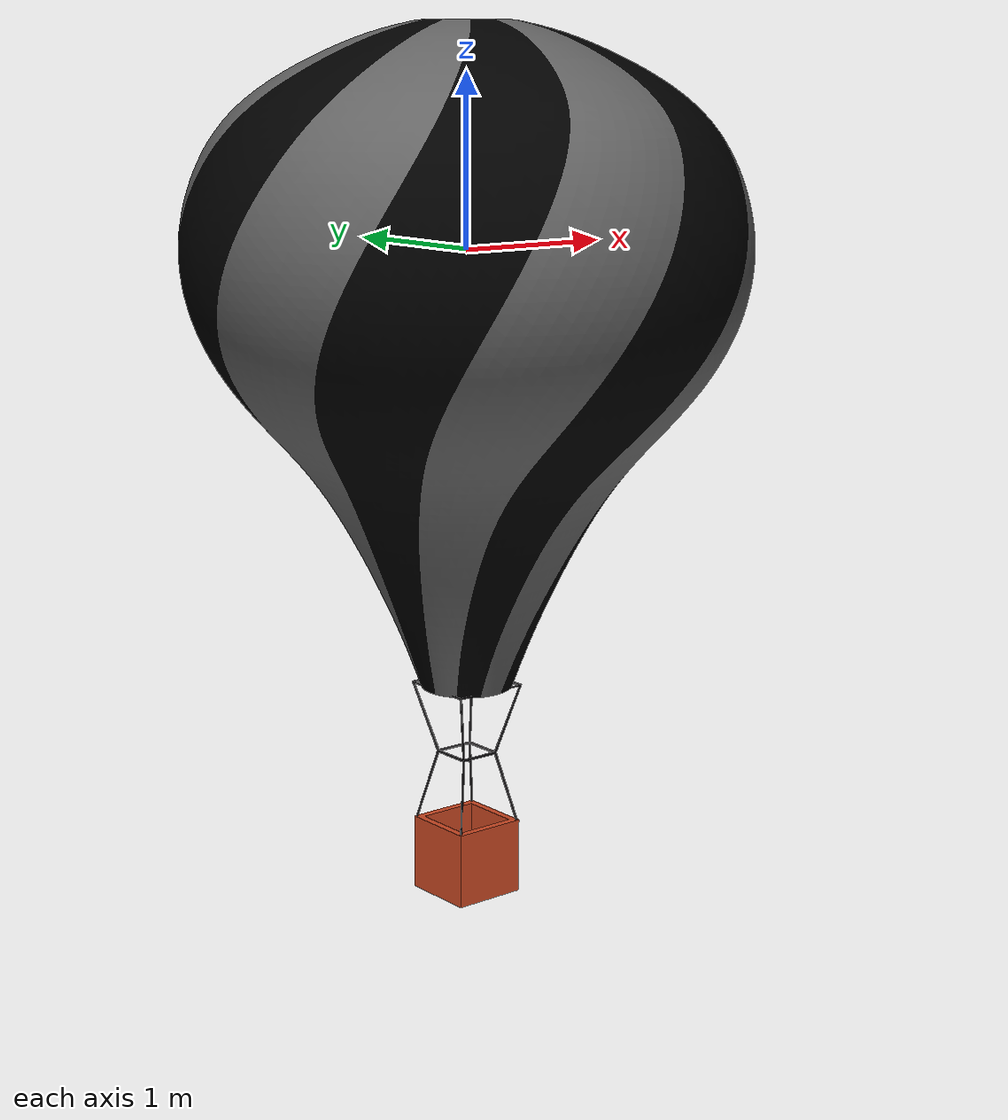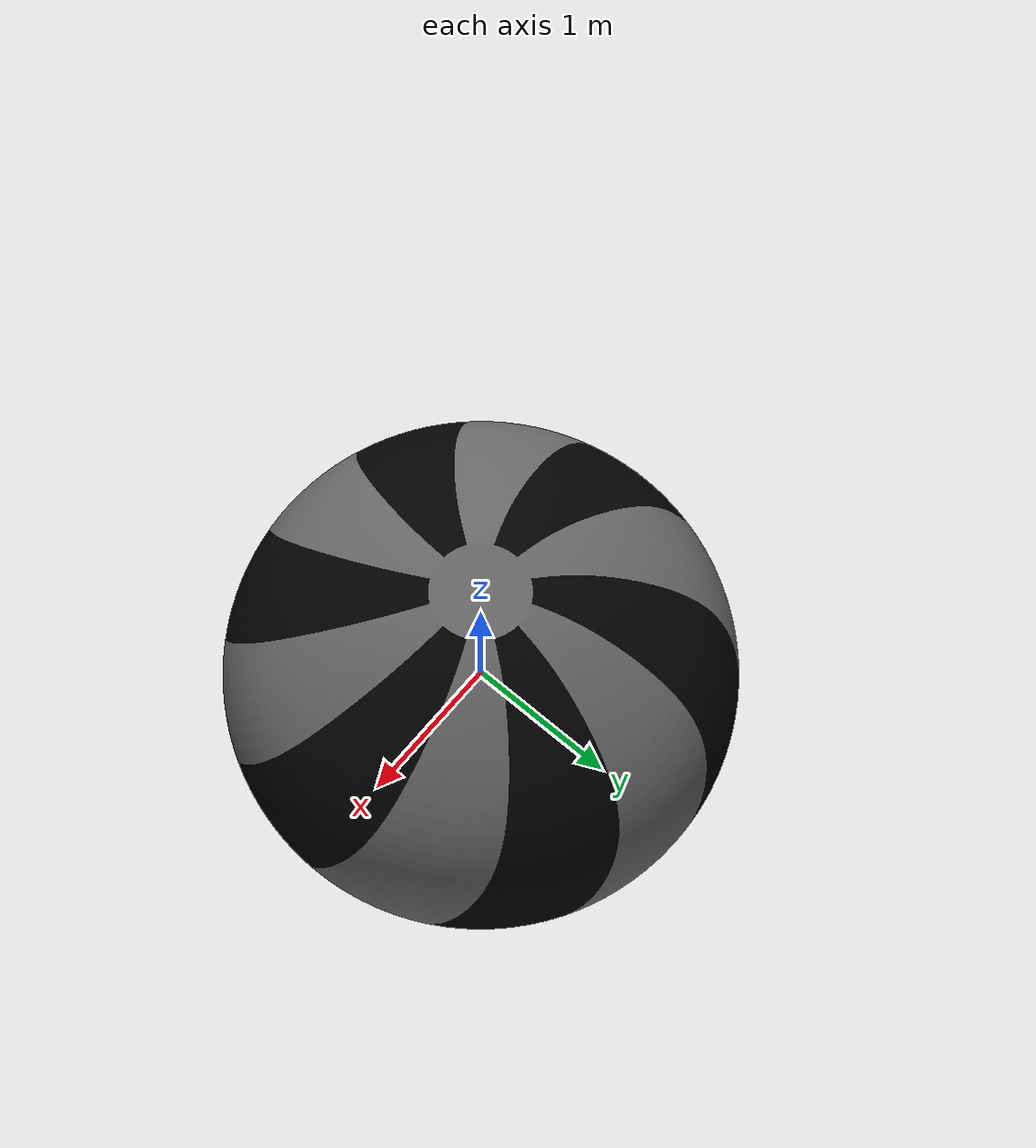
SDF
<?xml version="1.0"?>
<sdf version="1.6">
  <model name="ballon">
    <static>true</static>
    <link name="ballon_link">
      <visual name="ballon_visual">
        <cast_shadows>true</cast_shadows>
        <geometry>
          <mesh>
            <uri>model://ballon/meshes/balao_sem_logo.dae</uri>
          </mesh>
        </geometry>
      </visual>
      <collision name="collision_ballon">
        <geometry>
          <mesh>
            <uri>model://ballon/meshes/balao_sem_logo.dae</uri>
          </mesh>
        </geometry>
      </collision>
    </link>
  </model>
</sdf>
